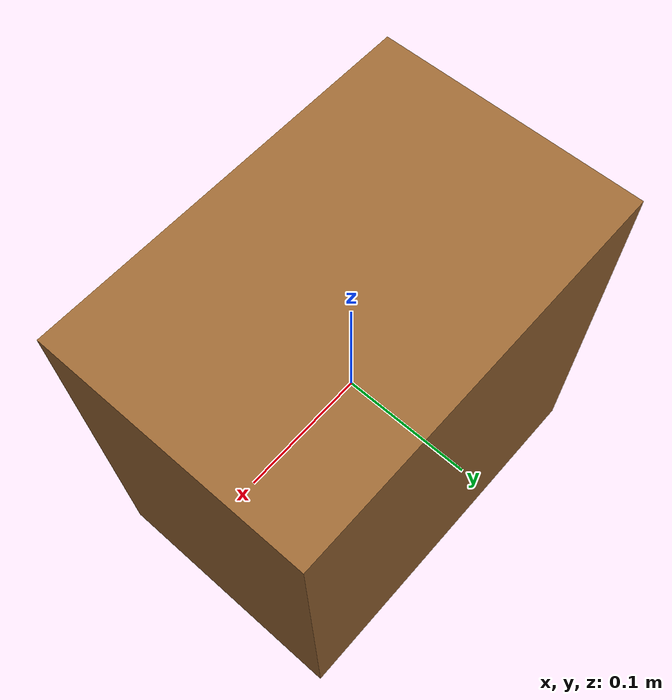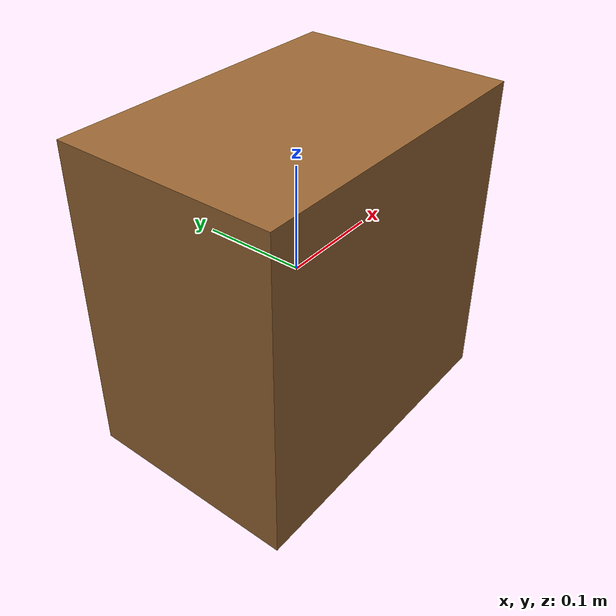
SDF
<?xml version="1.0"?>
<sdf version="1.7">
  <model name="cardboard_box">
    <static>false</static>
    <link name="link">
      <pose>0 0 0 0 0 0</pose>
      <inertial>
        <mass>0.3</mass>
        <inertia>
          <ixx>0.003</ixx>
          <iyy>0.003</iyy>
          <izz>0.003</izz>
        </inertia>
      </inertial>

      <collision name="collision">
        <geometry>
          <box>
            <size>0.3 0.2 0.3</size>
          </box>
        </geometry>
        <surface>
          <friction>
            <ode>
              <mu>0.8</mu>
              <mu2>0.8</mu2>
            </ode>
          </friction>
        </surface>
      </collision>

      <visual name="visual">
        <geometry>
          <box>
            <size>0.3 0.2 0.3</size>
          </box>
        </geometry>
        <material>
          <ambient>0.6 0.4 0.2 1</ambient>
          <diffuse>0.6 0.4 0.2 1</diffuse>
          <specular>0.6 0.4 0.2 1</specular>
        </material>
      </visual>
    </link>
  </model>
</sdf>
